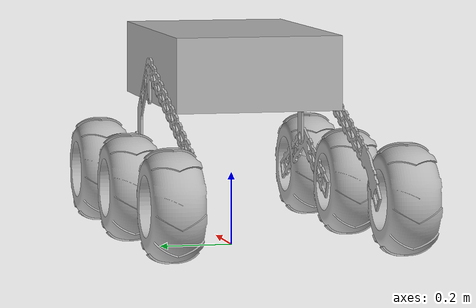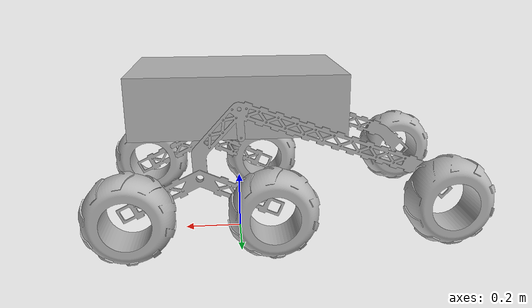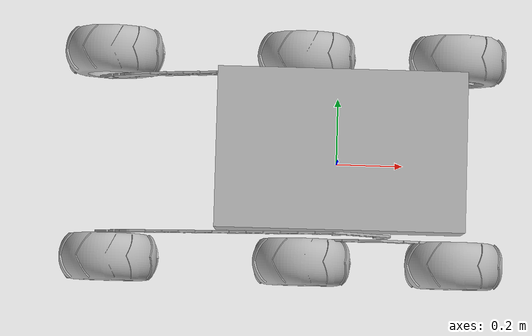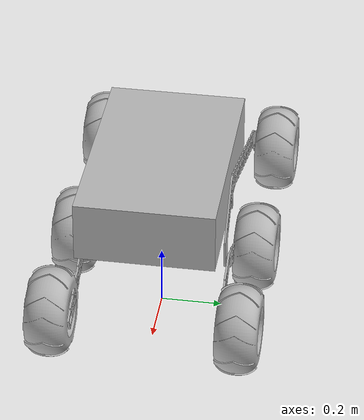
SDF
<?xml version='1.0'?>
<sdf version="1.4">
    <model name="Rover">
        <pose>0 0 0.5 0 0 0</pose>
        <static>false</static>

        <!-- Link  -->

        <link name="body">
            <gravity>true</gravity>

            <collision name="body_collision">
                <geometry>
                    <box>
                        <size>0.7 0.45 0.2</size>
                    </box>
                </geometry>
            </collision>

            <visual name="body_visual">
                <geometry>
                    <box>
                        <size>0.7 0.45 0.2</size>
                    </box>
                </geometry>
            </visual>
        </link>

        <link name="left_rocker">
            <gravity>true</gravity>
            <pose>0 -0.23 0 1.571 2.8 0</pose>

            <inertial>
                <pose>0 0 0 0 0 0</pose>
            </inertial>

            <collision name="left_rocker_collision">
                <geometry>
                    <mesh>
                        <scale>0.001 0.001 0.001</scale>
                        <uri>model://rover/meshes/Rocker.STL</uri>
                    </mesh>
                </geometry>
            </collision>

            <visual name="left_rocker_visual">
                <geometry>
                    <mesh>
                        <uri>model://rover/meshes/Rocker.STL</uri>
                        <scale>0.001 0.001 0.001</scale>
                    </mesh>
                </geometry>
            </visual>
        </link>

        <link name="right_rocker">
            <gravity>true</gravity>
            <pose>0 0.23 0 1.571 2.8 0</pose>

            <inertial>
                <pose>0 0 0 0 0 0</pose>
            </inertial>

            <collision name="left_rocker_collision">
                <geometry>
                    <mesh>
                        <uri>model://rover/meshes/Rocker.STL</uri>
                        <scale>0.001 0.001 0.001</scale>
                    </mesh>
                </geometry>
            </collision>

            <visual name="left_rocker_visual">
                <geometry>
                    <mesh>
                        <uri>model://rover/meshes/Rocker.STL</uri>
                        <scale>0.001 0.001 0.001</scale>
                    </mesh>
                </geometry>
            </visual>
        </link>

        <link name="right_bogie">
            <gravity>true</gravity>
            <pose>0.13 0.24 -0.22 1.571 -2 0</pose>

            <inertial>
                <pose>0 0 0 0 0 0</pose>
            </inertial>

            <collision name="right_bogie_collision">
                <geometry>
                    <mesh>
                        <uri>model://rover/meshes/Bogie.STL</uri>
                        <scale>0.001 0.001 0.001</scale>
                    </mesh>
                </geometry>
            </collision>

            <visual name="right_bogie_visual">
                <geometry>
                    <mesh>
                        <uri>model://rover/meshes/Bogie.STL</uri>
                        <scale>0.001 0.001 0.001</scale>
                    </mesh>
                </geometry>
            </visual>
        </link>

        <link name="left_bogie">
            <gravity>true</gravity>
            <pose>0.13 -0.24 -0.22 1.571 -2 0</pose>

            <inertial>
                <pose>0 0 0 0 0 0</pose>
            </inertial>

            <collision name="right_bogie_collision">
                <geometry>
                    <mesh>
                        <uri>model://rover/meshes/Bogie.STL</uri>
                        <scale>0.001 0.001 0.001</scale>
                    </mesh>
                </geometry>
            </collision>

            <visual name="right_bogie_visual">
                <geometry>
                    <mesh>
                        <uri>model://rover/meshes/Bogie.STL</uri>
                        <scale>0.001 0.001 0.001</scale>
                    </mesh>
                </geometry>
            </visual>
        </link>

        <link name="fr_wheel">
            <gravity>true</gravity>
            <pose>-0.67 0.305 -0.3 0 0 1.571</pose>

            <collision name="fr_wheel_collision">
                <geometry>
                    <mesh>
                        <uri>model://rover/meshes/Tire.STL</uri>
                        <scale>0.001 0.001 0.001</scale>
                    </mesh>
                </geometry>
                <surface>
                    <!-- This friction pamareter don't contain reliable data!! -->
                    <friction>
                        <ode>
                            <mu>100000.0</mu>
                            <mu2>100000.0</mu2>
                            <fdir1>0 0 0</fdir1>
                            <slip1>0.0</slip1>
                            <slip2>0.0</slip2>
                        </ode>
                    </friction>
                </surface>
            </collision>

            <visual name="fr_wheel_visual">
                <geometry>
                    <mesh>
                        <uri>model://rover/meshes/Tire.STL</uri>
                        <scale>0.001 0.001 0.001</scale>
                    </mesh>
                </geometry>
            </visual>
        </link>

        <link name="fl_wheel">
            <gravity>true</gravity>
            <pose>-0.67 -0.305 -0.3 0 0 1.571</pose>

            <inertial>
                <pose>0 0 0 0 0 0</pose>
            </inertial>

            <collision name="fl_wheel_collision">
                <geometry>
                    <mesh>
                        <uri>model://rover/meshes/Tire.STL</uri>
                        <scale>0.001 0.001 0.001</scale>
                    </mesh>
                </geometry>
                <surface>
                    <!-- This friction pamareter don't contain reliable data!! -->
                    <friction>
                        <ode>
                            <mu>100000.0</mu>
                            <mu2>100000.0</mu2>
                            <fdir1>0 0 0</fdir1>
                            <slip1>0.0</slip1>
                            <slip2>0.0</slip2>
                        </ode>
                    </friction>
                </surface>
            </collision>

            <visual name="fl_wheel_visual">
                <geometry>
                    <mesh>
                        <uri>model://rover/meshes/Tire.STL</uri>
                        <scale>0.001 0.001 0.001</scale>
                    </mesh>
                </geometry>
            </visual>
        </link>

        <link name="mr_wheel">
            <gravity>true</gravity>
            <pose>-0.1 0.305 -0.32 0 0 1.571</pose>

            <inertial>
                <pose>0 0 0 0 0 0</pose>
            </inertial>

            <collision name="mr_wheel_collision">
                <geometry>
                    <mesh>
                        <uri>model://rover/meshes/Tire.STL</uri>
                        <scale>0.001 0.001 0.001</scale>
                    </mesh>
                </geometry>
                <surface>
                    <!-- This friction pamareter don't contain reliable data!! -->
                    <friction>
                        <ode>
                            <mu>100000.0</mu>
                            <mu2>100000.0</mu2>
                            <fdir1>0 0 0</fdir1>
                            <slip1>0.0</slip1>
                            <slip2>0.0</slip2>
                        </ode>
                    </friction>
                </surface>
            </collision>

            <visual name="mr_wheel_visual">
                <geometry>
                    <mesh>
                        <uri>model://rover/meshes/Tire.STL</uri>
                        <scale>0.001 0.001 0.001</scale>
                    </mesh>
                </geometry>
            </visual>
        </link>

        <link name="ml_wheel">
            <gravity>true</gravity>
            <pose>-0.1 -0.305 -0.32 0 0 1.571</pose>

            <inertial>
                <pose>0 0 0 0 0 0</pose>
            </inertial>

            <collision name="ml_wheel_collision">
                <geometry>
                    <mesh>
                        <uri>model://rover/meshes/Tire.STL</uri>
                        <scale>0.001 0.001 0.001</scale>
                    </mesh>
                </geometry>
                <surface>
                    <!-- This friction pamareter don't contain reliable data!! -->
                    <friction>
                        <ode>
                            <mu>100000.0</mu>
                            <mu2>100000.0</mu2>
                            <fdir1>0 0 0</fdir1>
                            <slip1>0.0</slip1>
                            <slip2>0.0</slip2>
                        </ode>
                    </friction>
                </surface>
            </collision>

            <visual name="ml_wheel_visual">
                <geometry>
                    <mesh>
                        <uri>model://rover/meshes/Tire.STL</uri>
                        <scale>0.001 0.001 0.001</scale>
                    </mesh>
                </geometry>
            </visual>
        </link>

        <link name="br_wheel">
            <gravity>true</gravity>
            <pose>0.35 0.305 -0.32 0 0 1.571</pose>

            <inertial>
                <pose>0 0 0 0 0 0</pose>
            </inertial>

            <collision name="br_wheel_collision">
                <geometry>
                    <mesh>
                        <uri>model://rover/meshes/Tire.STL</uri>
                        <scale>0.001 0.001 0.001</scale>
                    </mesh>
                </geometry>
                <surface>
                    <!-- This friction pamareter don't contain reliable data!! -->
                    <friction>
                        <ode>
                            <mu>100000.0</mu>
                            <mu2>100000.0</mu2>
                            <fdir1>0 0 0</fdir1>
                            <slip1>0.0</slip1>
                            <slip2>0.0</slip2>
                        </ode>
                    </friction>
                </surface>
            </collision>

            <visual name="br_wheel_visual">
                <geometry>
                    <mesh>
                        <uri>model://rover/meshes/Tire.STL</uri>
                        <scale>0.001 0.001 0.001</scale>
                    </mesh>
                </geometry>
            </visual>
        </link>

        <link name="bl_wheel">
            <gravity>true</gravity>
            <pose>0.35 -0.305 -0.32 0 0 1.571</pose>

            <inertial>
                <pose>0 0 0 0 0 0</pose>
            </inertial>

            <collision name="bl_wheel_collision">
                <geometry>
                    <mesh>
                        <uri>model://rover/meshes/Tire.STL</uri>
                        <scale>0.001 0.001 0.001</scale>
                    </mesh>
                </geometry>
                <surface>
                    <!-- This friction pamareter don't contain reliable data!! -->
                    <friction>
                        <ode>
                            <mu>100000.0</mu>
                            <mu2>100000.0</mu2>
                            <fdir1>0 0 0</fdir1>
                            <slip1>0.0</slip1>
                            <slip2>0.0</slip2>
                        </ode>
                    </friction>
                </surface>
            </collision>

            <visual name="bl_wheel_visual">
                <geometry>
                    <mesh>
                        <uri>model://rover/meshes/Tire.STL</uri>
                        <scale>0.001 0.001 0.001</scale>
                    </mesh>
                </geometry>
            </visual>
        </link>

        <!-- Joint  -->

        <joint name="left_rocker_joint" type="revolute">
            <pose>0 0 0 0 0 0</pose>
            <child>left_rocker</child>
            <parent>body</parent>
            <axis>
                <limit>
                    <lower>-1.571</lower>
                    <upper>1.571</upper>
                </limit>
                <xyz>0 -1 0</xyz>
            </axis>
        </joint>

        <joint name="right_rocker_joint" type="revolute">
            <pose>0 0 0 0 0 0</pose>
            <child>right_rocker</child>
            <parent>body</parent>
            <axis>
                <limit>
                    <lower>-1.571</lower>
                    <upper>1.571</upper>
                </limit>
                <xyz>0 -1 0</xyz>
            </axis>
        </joint>

        <joint name="left_bogie_joint" type="revolute">
            <pose>0 0 0 0 0 0</pose>
            <child>left_bogie</child>
            <parent>left_rocker</parent>
            <axis>
                <limit>
                    <lower>-1.571</lower>
                    <upper>1.571</upper>
                </limit>
                <xyz>0 -1 0</xyz>
            </axis>
        </joint>

        <joint name="right_bogie_joint" type="revolute">
            <pose>0 0 0 0 0 0</pose>
            <child>right_bogie</child>
            <parent>right_rocker</parent>
            <axis>
                <limit>
                    <lower>-1.571</lower>
                    <upper>1.571</upper>
                </limit>
                <xyz>0 -1 0</xyz>
            </axis>
        </joint>

        <joint name="fl_wheel_joint" type="revolute">
            <pose>0 0 0 0 0 0</pose>
            <child>fl_wheel</child>
            <parent>left_rocker</parent>
            <axis>
                <xyz>0 -1 0</xyz>
            </axis>
        </joint>

        <joint name="fr_wheel_joint" type="revolute">
            <pose>0 0 0 0 0 0</pose>
            <child>fr_wheel</child>
            <parent>right_rocker</parent>
            <axis>
                <xyz>0 -1 0</xyz>
            </axis>
        </joint>

        <joint name="ml_wheel_joint" type="revolute">
            <pose>0 0 0 0 0 0</pose>
            <child>ml_wheel</child>
            <parent>left_bogie</parent>
            <axis>
                <xyz>0 -1 0</xyz>
            </axis>
        </joint>

        <joint name="mr_wheel_joint" type="revolute">
            <pose>0 0 0 0 0 0</pose>
            <child>mr_wheel</child>
            <parent>right_bogie</parent>
            <axis>
                <xyz>0 -1 0</xyz>
            </axis>
        </joint>

        <joint name="bl_wheel_joint" type="revolute">
            <pose>0 0 0 0 0 0</pose>
            <child>bl_wheel</child>
            <parent>left_bogie</parent>
            <axis>
                <xyz>0 -1 0</xyz>
            </axis>
        </joint>

        <joint name="br_wheel_joint" type="revolute">
            <pose>0 0 0 0 0 0</pose>
            <child>br_wheel</child>
            <parent>right_bogie</parent>
            <axis>
                <xyz>0 -1 0</xyz>
            </axis>
        </joint>

    </model>
</sdf>
